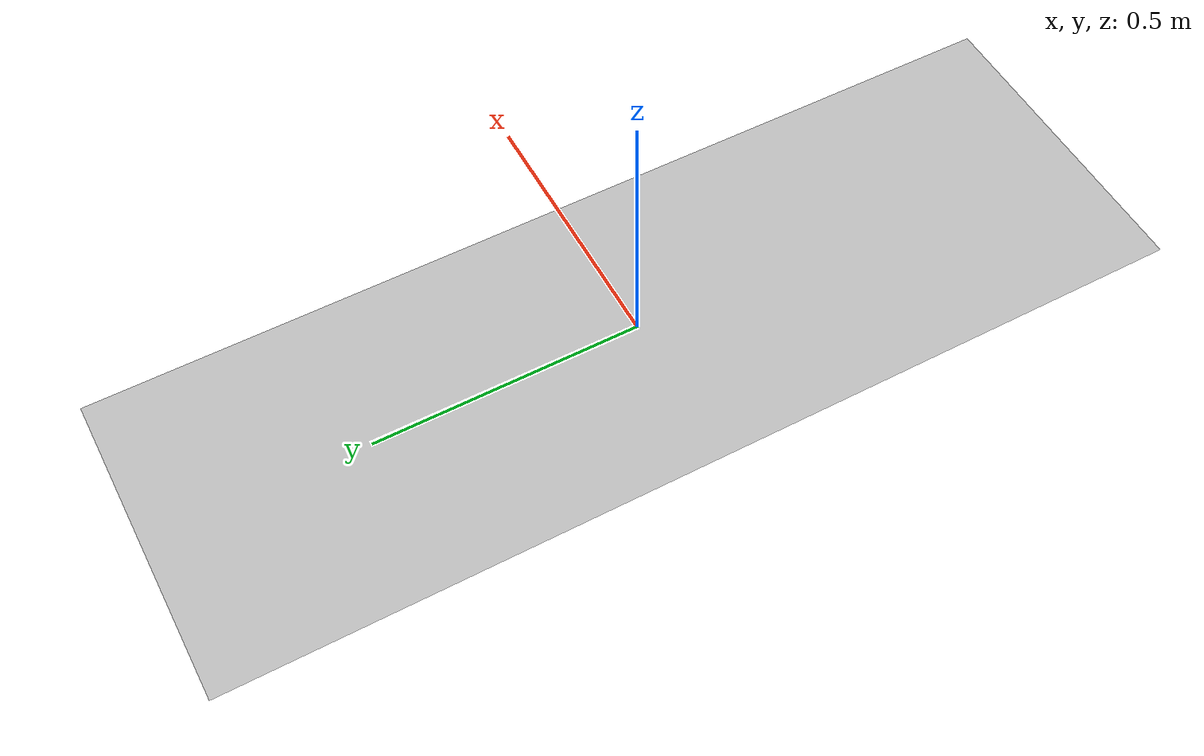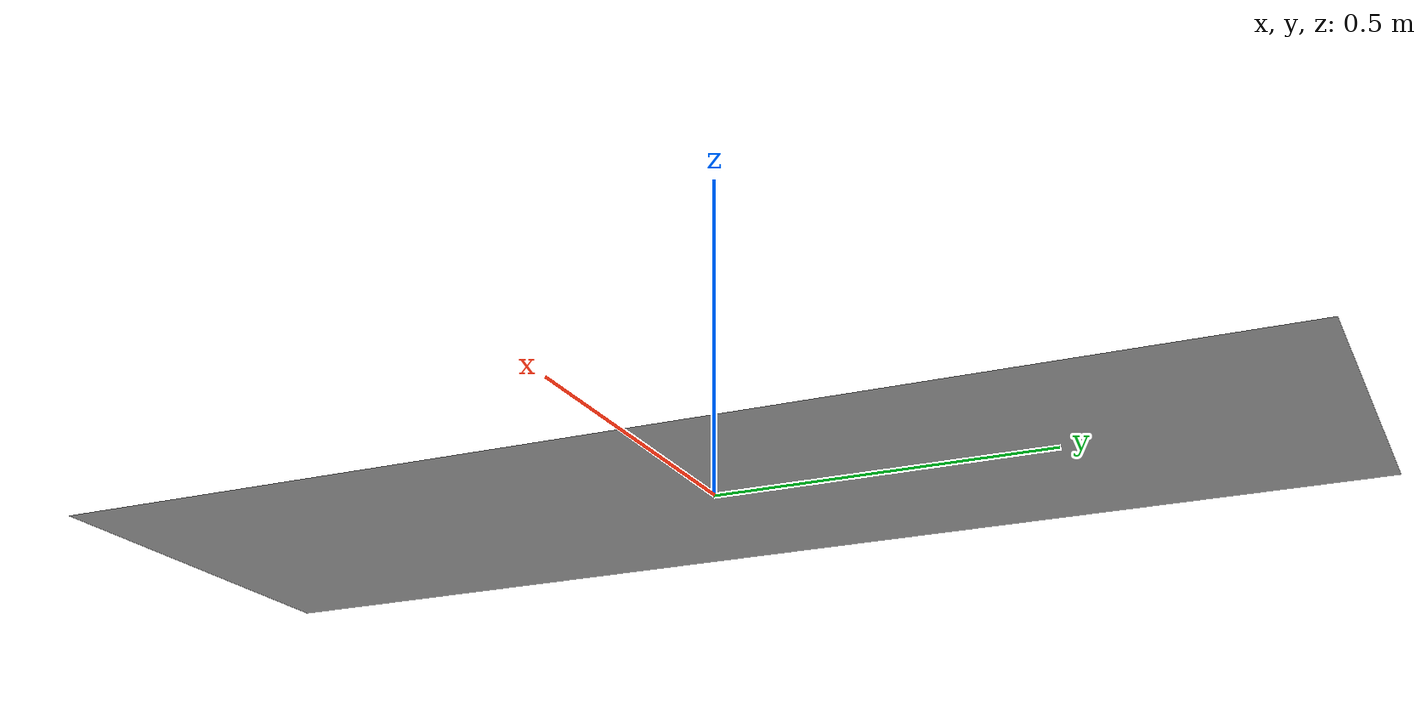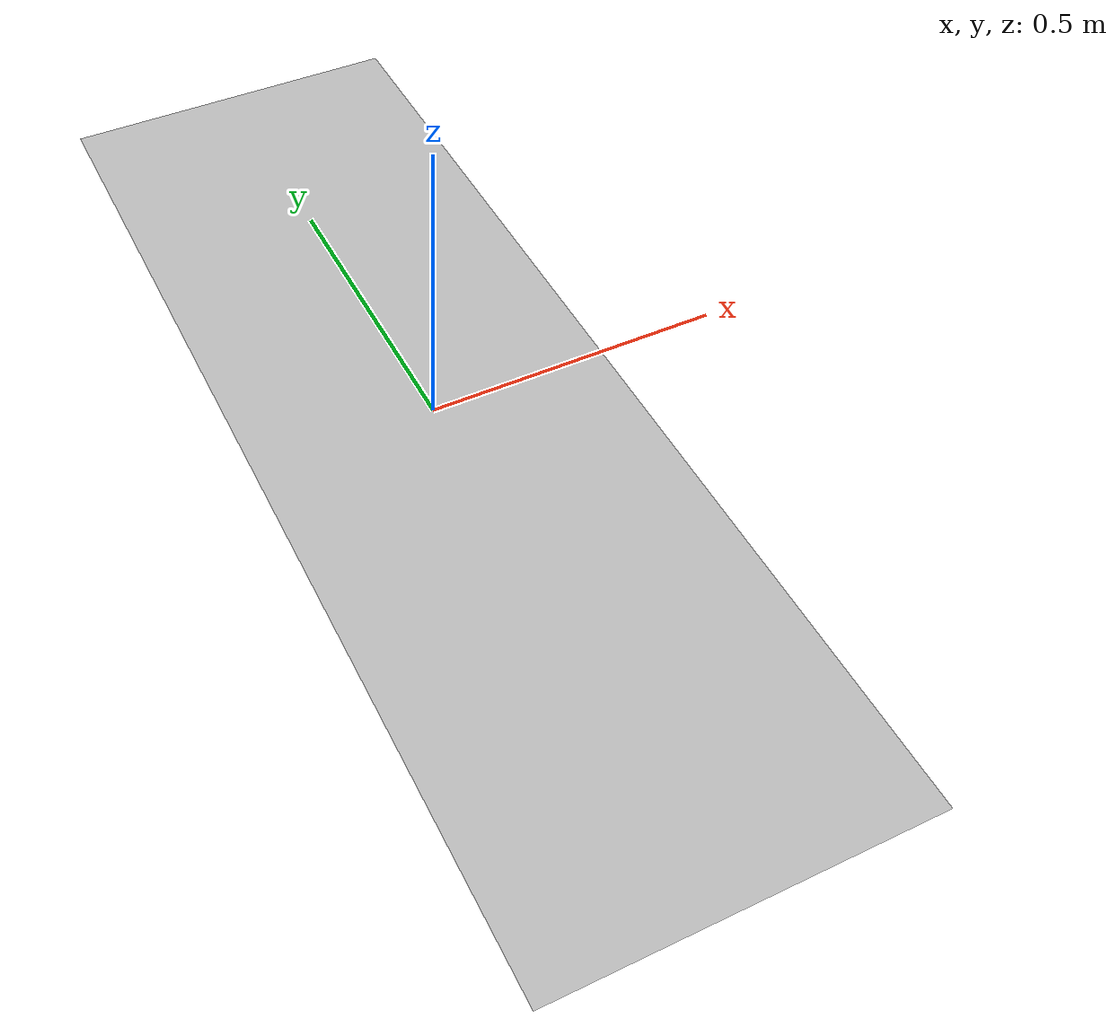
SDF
<?xml version="1.0"?>
<sdf version="1.6">
  <model name="race_end">
      <static>true</static>
      <link name="link">
         <collision name="collision">
            <geometry>
               <plane>

                  <normal>0 0 1</normal>
                  <size>0.6 1.8 0.0001</size>

               </plane>
            </geometry>
            <surface>
               <friction>
                  <ode>
                     <mu>100</mu>
                     <mu2>50</mu2>
                  </ode>
               </friction>
            </surface>
         </collision>
         <visual name="visual">

            <cast_shadows>false</cast_shadows>
            <geometry>
               <plane>
                  <normal>0 0 1</normal>
                  <size>0.6 1.8 0.0001</size>
               </plane>

            </geometry>
            <material>
               <script>
                  <uri>model://race_end/materials/scripts</uri>
                  <uri>model://race_end/materials/textures</uri>
                  <name>race_end_mat</name>
               </script>
            </material>
         </visual>
      </link>
   </model>
</sdf>
